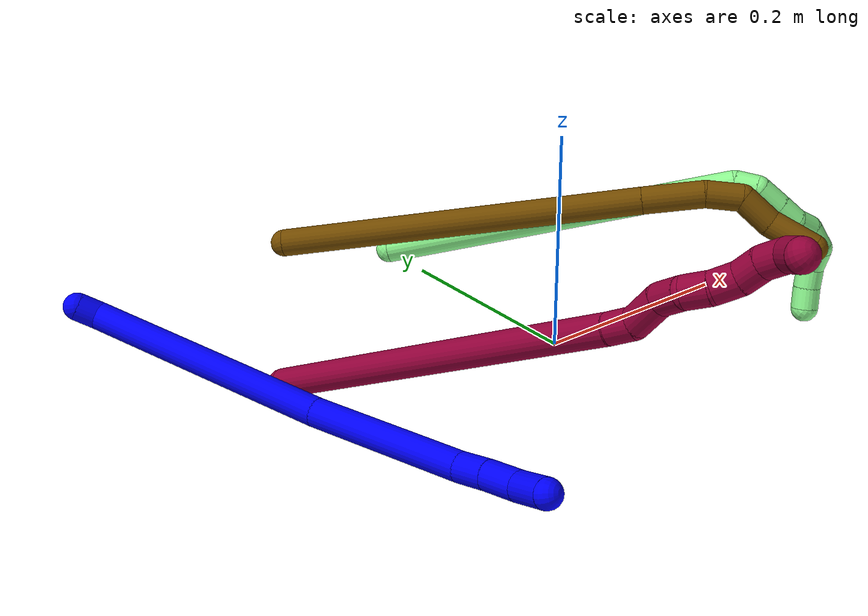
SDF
<sdf version="1.7">
 <world name="default">
  <model name="1">
   <static>0</static>
   <link name="1">
    <collision name="collision-cylinder-e_1_1_4">
     <pose>-0.003978 -0.00771 -0.005909 2.22469 -0.388654 -0.758919</pose>
     <geometry><cylinder><radius>0.0125</radius><length>0.020993</length></cylinder></geometry>
     <surface>
      <friction><ode><mu>1.16</mu><mu2>1.16</mu2><slip1>0</slip1><slip2>0</slip2></ode></friction>
      <contact><ode><kp>1e+06</kp><kd>1</kd><max_vel>0</max_vel><min_depth>0.001</min_depth></ode></contact>
     </surface>
    </collision>
    <visual name="visual-cylinder-e_1_1_4">
     <pose>-0.003978 -0.00771 -0.005909 2.22469 -0.388654 -0.758919</pose>
     <geometry><cylinder><radius>0.0125</radius><length>0.020993</length></cylinder></geometry>
     <material><ambient>0 0 1 1</ambient></material>
    </visual>
    <collision name="collision-cylinder-e_2_4_5">
     <pose>0.000942 -0.066885 -0.120306 2.69865 0.073965 0.325731</pose>
     <geometry><cylinder><radius>0.0125</radius><length>0.240812</length></cylinder></geometry>
     <surface>
      <friction><ode><mu>1.16</mu><mu2>1.16</mu2><slip1>0</slip1><slip2>0</slip2></ode></friction>
      <contact><ode><kp>1e+06</kp><kd>1</kd><max_vel>0</max_vel><min_depth>0.001</min_depth></ode></contact>
     </surface>
    </collision>
    <visual name="visual-cylinder-e_2_4_5">
     <pose>0.000942 -0.066885 -0.120306 2.69865 0.073965 0.325731</pose>
     <geometry><cylinder><radius>0.0125</radius><length>0.240812</length></cylinder></geometry>
     <material><ambient>0 0 1 1</ambient></material>
    </visual>
    <collision name="collision-cylinder-e_3_5_6">
     <pose>0.018374 -0.141351 -0.296509 2.81414 0.11877 0.690915</pose>
     <geometry><cylinder><radius>0.0125</radius><length>0.144044</length></cylinder></geometry>
     <surface>
      <friction><ode><mu>1.16</mu><mu2>1.16</mu2><slip1>0</slip1><slip2>0</slip2></ode></friction>
      <contact><ode><kp>1e+06</kp><kd>1</kd><max_vel>0</max_vel><min_depth>0.001</min_depth></ode></contact>
     </surface>
    </collision>
    <visual name="visual-cylinder-e_3_5_6">
     <pose>0.018374 -0.141351 -0.296509 2.81414 0.11877 0.690915</pose>
     <geometry><cylinder><radius>0.0125</radius><length>0.144044</length></cylinder></geometry>
     <material><ambient>0 0 1 1</ambient></material>
    </visual>
    <collision name="collision-cylinder-e_4_6_7">
     <pose>0.029696 -0.166429 -0.377815 2.98997 0.200029 1.84575</pose>
     <geometry><cylinder><radius>0.0125</radius><length>0.028056</length></cylinder></geometry>
     <surface>
      <friction><ode><mu>1.16</mu><mu2>1.16</mu2><slip1>0</slip1><slip2>0</slip2></ode></friction>
      <contact><ode><kp>1e+06</kp><kd>1</kd><max_vel>0</max_vel><min_depth>0.001</min_depth></ode></contact>
     </surface>
    </collision>
    <visual name="visual-cylinder-e_4_6_7">
     <pose>0.029696 -0.166429 -0.377815 2.98997 0.200029 1.84575</pose>
     <geometry><cylinder><radius>0.0125</radius><length>0.028056</length></cylinder></geometry>
     <material><ambient>0 0 1 1</ambient></material>
    </visual>
    <collision name="collision-cylinder-e_5_7_8">
     <pose>0.036235 -0.171297 -0.406547 2.95928 0.239063 1.84048</pose>
     <geometry><cylinder><radius>0.0125</radius><length>0.031695</length></cylinder></geometry>
     <surface>
      <friction><ode><mu>1.16</mu><mu2>1.16</mu2><slip1>0</slip1><slip2>0</slip2></ode></friction>
      <contact><ode><kp>1e+06</kp><kd>1</kd><max_vel>0</max_vel><min_depth>0.001</min_depth></ode></contact>
     </surface>
    </collision>
    <visual name="visual-cylinder-e_5_7_8">
     <pose>0.036235 -0.171297 -0.406547 2.95928 0.239063 1.84048</pose>
     <geometry><cylinder><radius>0.0125</radius><length>0.031695</length></cylinder></geometry>
     <material><ambient>0 0 1 1</ambient></material>
    </visual>
    <collision name="collision-cylinder-e_6_8_2">
     <pose>0.046728 -0.172669 -0.437449 -3.05175 0.402647 -2.70799</pose>
     <geometry><cylinder><radius>0.0125</radius><length>0.0344</length></cylinder></geometry>
     <surface>
      <friction><ode><mu>1.16</mu><mu2>1.16</mu2><slip1>0</slip1><slip2>0</slip2></ode></friction>
      <contact><ode><kp>1e+06</kp><kd>1</kd><max_vel>0</max_vel><min_depth>0.001</min_depth></ode></contact>
     </surface>
    </collision>
    <visual name="visual-cylinder-e_6_8_2">
     <pose>0.046728 -0.172669 -0.437449 -3.05175 0.402647 -2.70799</pose>
     <geometry><cylinder><radius>0.0125</radius><length>0.0344</length></cylinder></geometry>
     <material><ambient>0 0 1 1</ambient></material>
    </visual>
    <collision name="collision-sphere-2">
     <pose>0.053468 -0.171249 -0.45321 0 -0 0</pose>
     <geometry><sphere><radius>0.0125</radius></sphere></geometry>
     <surface>
      <friction><ode><mu>1.16</mu><mu2>1.16</mu2><slip1>0</slip1><slip2>0</slip2></ode></friction>
      <contact><ode><kp>1e+06</kp><kd>1</kd><max_vel>0</max_vel><min_depth>0.001</min_depth></ode></contact>
     </surface>
    </collision>
    <visual name="visual-sphere-2">
     <pose>0.053468 -0.171249 -0.45321 0 -0 0</pose>
     <geometry><sphere><radius>0.0125</radius></sphere></geometry>
     <material><ambient>0 0 1 1</ambient></material>
    </visual>
    <collision name="collision-sphere-4">
     <pose>-0.007955 -0.01542 -0.011817 0 -0 0</pose>
     <geometry><sphere><radius>0.0125</radius></sphere></geometry>
     <surface>
      <friction><ode><mu>1.16</mu><mu2>1.16</mu2><slip1>0</slip1><slip2>0</slip2></ode></friction>
      <contact><ode><kp>1e+06</kp><kd>1</kd><max_vel>0</max_vel><min_depth>0.001</min_depth></ode></contact>
     </surface>
    </collision>
    <visual name="visual-sphere-4">
     <pose>-0.007955 -0.01542 -0.011817 0 -0 0</pose>
     <geometry><sphere><radius>0.0125</radius></sphere></geometry>
     <material><ambient>0 0 1 1</ambient></material>
    </visual>
    <collision name="collision-sphere-1">
     <geometry><sphere><radius>0.0125</radius></sphere></geometry>
     <surface>
      <friction><ode><mu>1.16</mu><mu2>1.16</mu2><slip1>0</slip1><slip2>0</slip2></ode></friction>
      <contact><ode><kp>1e+06</kp><kd>1</kd><max_vel>0</max_vel><min_depth>0.001</min_depth></ode></contact>
     </surface>
    </collision>
    <visual name="visual-sphere-1">
     <geometry><sphere><radius>0.0125</radius></sphere></geometry>
     <material><ambient>0 0 1 1</ambient></material>
    </visual>
    <collision name="collision-sphere-8">
     <pose>0.039988 -0.174089 -0.421689 0 -0 0</pose>
     <geometry><sphere><radius>0.0125</radius></sphere></geometry>
     <surface>
      <friction><ode><mu>1.16</mu><mu2>1.16</mu2><slip1>0</slip1><slip2>0</slip2></ode></friction>
      <contact><ode><kp>1e+06</kp><kd>1</kd><max_vel>0</max_vel><min_depth>0.001</min_depth></ode></contact>
     </surface>
    </collision>
    <visual name="visual-sphere-8">
     <pose>0.039988 -0.174089 -0.421689 0 -0 0</pose>
     <geometry><sphere><radius>0.0125</radius></sphere></geometry>
     <material><ambient>0 0 1 1</ambient></material>
    </visual>
    <collision name="collision-sphere-5">
     <pose>0.00984 -0.11835 -0.228794 0 -0 0</pose>
     <geometry><sphere><radius>0.0125</radius></sphere></geometry>
     <surface>
      <friction><ode><mu>1.16</mu><mu2>1.16</mu2><slip1>0</slip1><slip2>0</slip2></ode></friction>
      <contact><ode><kp>1e+06</kp><kd>1</kd><max_vel>0</max_vel><min_depth>0.001</min_depth></ode></contact>
     </surface>
    </collision>
    <visual name="visual-sphere-5">
     <pose>0.00984 -0.11835 -0.228794 0 -0 0</pose>
     <geometry><sphere><radius>0.0125</radius></sphere></geometry>
     <material><ambient>0 0 1 1</ambient></material>
    </visual>
    <collision name="collision-sphere-6">
     <pose>0.026908 -0.164353 -0.364224 0 -0 0</pose>
     <geometry><sphere><radius>0.0125</radius></sphere></geometry>
     <surface>
      <friction><ode><mu>1.16</mu><mu2>1.16</mu2><slip1>0</slip1><slip2>0</slip2></ode></friction>
      <contact><ode><kp>1e+06</kp><kd>1</kd><max_vel>0</max_vel><min_depth>0.001</min_depth></ode></contact>
     </surface>
    </collision>
    <visual name="visual-sphere-6">
     <pose>0.026908 -0.164353 -0.364224 0 -0 0</pose>
     <geometry><sphere><radius>0.0125</radius></sphere></geometry>
     <material><ambient>0 0 1 1</ambient></material>
    </visual>
    <collision name="collision-sphere-7">
     <pose>0.032483 -0.168506 -0.391405 0 -0 0</pose>
     <geometry><sphere><radius>0.0125</radius></sphere></geometry>
     <surface>
      <friction><ode><mu>1.16</mu><mu2>1.16</mu2><slip1>0</slip1><slip2>0</slip2></ode></friction>
      <contact><ode><kp>1e+06</kp><kd>1</kd><max_vel>0</max_vel><min_depth>0.001</min_depth></ode></contact>
     </surface>
    </collision>
    <visual name="visual-sphere-7">
     <pose>0.032483 -0.168506 -0.391405 0 -0 0</pose>
     <geometry><sphere><radius>0.0125</radius></sphere></geometry>
     <material><ambient>0 0 1 1</ambient></material>
    </visual>
    <inertial>
     <pose>0.012758 -0.105336 -0.220678 0 -0 0</pose>
     <mass>0.5</mass>
     <inertia>
      <ixx>0.001842</ixx>
      <ixy>0</ixy>
      <ixz>0</ixz>
      <iyy>-0.00064</iyy>
      <iyz>0</iyz>
      <izz>0.00043</izz>
     </inertia>
    </inertial>
   </link>
   <pose>-0.34319 0.253969 0.045245 1.92049 0.121931 -2.73501</pose>
  </model>
  <model name="8">
   <static>0</static>
   <link name="8">
    <collision name="collision-cylinder-e_1_1_4">
     <pose>-0.030015 -0.048874 0.15183 0.311425 -0.186003 -0.029282</pose>
     <geometry><cylinder><radius>0.0125</radius><length>0.324604</length></cylinder></geometry>
     <surface>
      <friction><ode><mu>1.16</mu><mu2>1.16</mu2><slip1>0</slip1><slip2>0</slip2></ode></friction>
      <contact><ode><kp>1e+06</kp><kd>1</kd><max_vel>0</max_vel><min_depth>0.001</min_depth></ode></contact>
     </surface>
    </collision>
    <visual name="visual-cylinder-e_1_1_4">
     <pose>-0.030015 -0.048874 0.15183 0.311425 -0.186003 -0.029282</pose>
     <geometry><cylinder><radius>0.0125</radius><length>0.324604</length></cylinder></geometry>
     <material><ambient>0.584314 0 0.227451 1</ambient></material>
    </visual>
    <collision name="collision-cylinder-e_2_4_5">
     <pose>-0.06149 -0.101757 0.313288 0.394524 -0.139081 -0.02784</pose>
     <geometry><cylinder><radius>0.0125</radius><length>0.021061</length></cylinder></geometry>
     <surface>
      <friction><ode><mu>1.16</mu><mu2>1.16</mu2><slip1>0</slip1><slip2>0</slip2></ode></friction>
      <contact><ode><kp>1e+06</kp><kd>1</kd><max_vel>0</max_vel><min_depth>0.001</min_depth></ode></contact>
     </surface>
    </collision>
    <visual name="visual-cylinder-e_2_4_5">
     <pose>-0.06149 -0.101757 0.313288 0.394524 -0.139081 -0.02784</pose>
     <geometry><cylinder><radius>0.0125</radius><length>0.021061</length></cylinder></geometry>
     <material><ambient>0.584314 0 0.227451 1</ambient></material>
    </visual>
    <collision name="collision-cylinder-e_3_5_6">
     <pose>-0.058922 -0.10721 0.337686 0.097476 0.26501 0.013002</pose>
     <geometry><cylinder><radius>0.0125</radius><length>0.030755</length></cylinder></geometry>
     <surface>
      <friction><ode><mu>1.16</mu><mu2>1.16</mu2><slip1>0</slip1><slip2>0</slip2></ode></friction>
      <contact><ode><kp>1e+06</kp><kd>1</kd><max_vel>0</max_vel><min_depth>0.001</min_depth></ode></contact>
     </surface>
    </collision>
    <visual name="visual-cylinder-e_3_5_6">
     <pose>-0.058922 -0.10721 0.337686 0.097476 0.26501 0.013002</pose>
     <geometry><cylinder><radius>0.0125</radius><length>0.030755</length></cylinder></geometry>
     <material><ambient>0.584314 0 0.227451 1</ambient></material>
    </visual>
    <collision name="collision-cylinder-e_4_6_7">
     <pose>-0.056154 -0.108875 0.363711 0.019688 -0.111441 -0.001098</pose>
     <geometry><cylinder><radius>0.0125</radius><length>0.022653</length></cylinder></geometry>
     <surface>
      <friction><ode><mu>1.16</mu><mu2>1.16</mu2><slip1>0</slip1><slip2>0</slip2></ode></friction>
      <contact><ode><kp>1e+06</kp><kd>1</kd><max_vel>0</max_vel><min_depth>0.001</min_depth></ode></contact>
     </surface>
    </collision>
    <visual name="visual-cylinder-e_4_6_7">
     <pose>-0.056154 -0.108875 0.363711 0.019688 -0.111441 -0.001098</pose>
     <geometry><cylinder><radius>0.0125</radius><length>0.022653</length></cylinder></geometry>
     <material><ambient>0.584314 0 0.227451 1</ambient></material>
    </visual>
    <collision name="collision-cylinder-e_5_7_8">
     <pose>-0.059388 -0.113425 0.38396 0.448436 -0.19526 -0.044664</pose>
     <geometry><cylinder><radius>0.0125</radius><length>0.020352</length></cylinder></geometry>
     <surface>
      <friction><ode><mu>1.16</mu><mu2>1.16</mu2><slip1>0</slip1><slip2>0</slip2></ode></friction>
      <contact><ode><kp>1e+06</kp><kd>1</kd><max_vel>0</max_vel><min_depth>0.001</min_depth></ode></contact>
     </surface>
    </collision>
    <visual name="visual-cylinder-e_5_7_8">
     <pose>-0.059388 -0.113425 0.38396 0.448436 -0.19526 -0.044664</pose>
     <geometry><cylinder><radius>0.0125</radius><length>0.020352</length></cylinder></geometry>
     <material><ambient>0.584314 0 0.227451 1</ambient></material>
    </visual>
    <collision name="collision-cylinder-e_6_8_9">
     <pose>-0.061501 -0.123465 0.401489 0.58984 -0.013486 -0.004097</pose>
     <geometry><cylinder><radius>0.0125</radius><length>0.020538</length></cylinder></geometry>
     <surface>
      <friction><ode><mu>1.16</mu><mu2>1.16</mu2><slip1>0</slip1><slip2>0</slip2></ode></friction>
      <contact><ode><kp>1e+06</kp><kd>1</kd><max_vel>0</max_vel><min_depth>0.001</min_depth></ode></contact>
     </surface>
    </collision>
    <visual name="visual-cylinder-e_6_8_9">
     <pose>-0.061501 -0.123465 0.401489 0.58984 -0.013486 -0.004097</pose>
     <geometry><cylinder><radius>0.0125</radius><length>0.020538</length></cylinder></geometry>
     <material><ambient>0.584314 0 0.227451 1</ambient></material>
    </visual>
    <collision name="collision-cylinder-e_7_9_10">
     <pose>-0.059754 -0.131302 0.419625 0.217873 0.189329 0.020768</pose>
     <geometry><cylinder><radius>0.0125</radius><length>0.02003</length></cylinder></geometry>
     <surface>
      <friction><ode><mu>1.16</mu><mu2>1.16</mu2><slip1>0</slip1><slip2>0</slip2></ode></friction>
      <contact><ode><kp>1e+06</kp><kd>1</kd><max_vel>0</max_vel><min_depth>0.001</min_depth></ode></contact>
     </surface>
    </collision>
    <visual name="visual-cylinder-e_7_9_10">
     <pose>-0.059754 -0.131302 0.419625 0.217873 0.189329 0.020768</pose>
     <geometry><cylinder><radius>0.0125</radius><length>0.02003</length></cylinder></geometry>
     <material><ambient>0.584314 0 0.227451 1</ambient></material>
    </visual>
    <collision name="collision-cylinder-e_8_10_11">
     <pose>-0.058665 -0.134926 0.439086 0.150783 -0.079582 -0.006014</pose>
     <geometry><cylinder><radius>0.0125</radius><length>0.020004</length></cylinder></geometry>
     <surface>
      <friction><ode><mu>1.16</mu><mu2>1.16</mu2><slip1>0</slip1><slip2>0</slip2></ode></friction>
      <contact><ode><kp>1e+06</kp><kd>1</kd><max_vel>0</max_vel><min_depth>0.001</min_depth></ode></contact>
     </surface>
    </collision>
    <visual name="visual-cylinder-e_8_10_11">
     <pose>-0.058665 -0.134926 0.439086 0.150783 -0.079582 -0.006014</pose>
     <geometry><cylinder><radius>0.0125</radius><length>0.020004</length></cylinder></geometry>
     <material><ambient>0.584314 0 0.227451 1</ambient></material>
    </visual>
    <collision name="collision-cylinder-e_9_11_2">
     <pose>-0.062087 -0.132214 0.457627 -0.451401 -0.265837 0.061382</pose>
     <geometry><cylinder><radius>0.0125</radius><length>0.020002</length></cylinder></geometry>
     <surface>
      <friction><ode><mu>1.16</mu><mu2>1.16</mu2><slip1>0</slip1><slip2>0</slip2></ode></friction>
      <contact><ode><kp>1e+06</kp><kd>1</kd><max_vel>0</max_vel><min_depth>0.001</min_depth></ode></contact>
     </surface>
    </collision>
    <visual name="visual-cylinder-e_9_11_2">
     <pose>-0.062087 -0.132214 0.457627 -0.451401 -0.265837 0.061382</pose>
     <geometry><cylinder><radius>0.0125</radius><length>0.020002</length></cylinder></geometry>
     <material><ambient>0.584314 0 0.227451 1</ambient></material>
    </visual>
    <collision name="collision-sphere-2">
     <pose>-0.064715 -0.128004 0.46631 0 -0 0</pose>
     <geometry><sphere><radius>0.0125</radius></sphere></geometry>
     <surface>
      <friction><ode><mu>1.16</mu><mu2>1.16</mu2><slip1>0</slip1><slip2>0</slip2></ode></friction>
      <contact><ode><kp>1e+06</kp><kd>1</kd><max_vel>0</max_vel><min_depth>0.001</min_depth></ode></contact>
     </surface>
    </collision>
    <visual name="visual-sphere-2">
     <pose>-0.064715 -0.128004 0.46631 0 -0 0</pose>
     <geometry><sphere><radius>0.0125</radius></sphere></geometry>
     <material><ambient>0.584314 0 0.227451 1</ambient></material>
    </visual>
    <collision name="collision-sphere-11">
     <pose>-0.05946 -0.136424 0.448943 0 -0 0</pose>
     <geometry><sphere><radius>0.0125</radius></sphere></geometry>
     <surface>
      <friction><ode><mu>1.16</mu><mu2>1.16</mu2><slip1>0</slip1><slip2>0</slip2></ode></friction>
      <contact><ode><kp>1e+06</kp><kd>1</kd><max_vel>0</max_vel><min_depth>0.001</min_depth></ode></contact>
     </surface>
    </collision>
    <visual name="visual-sphere-11">
     <pose>-0.05946 -0.136424 0.448943 0 -0 0</pose>
     <geometry><sphere><radius>0.0125</radius></sphere></geometry>
     <material><ambient>0.584314 0 0.227451 1</ambient></material>
    </visual>
    <collision name="collision-sphere-10">
     <pose>-0.05787 -0.133428 0.429229 0 -0 0</pose>
     <geometry><sphere><radius>0.0125</radius></sphere></geometry>
     <surface>
      <friction><ode><mu>1.16</mu><mu2>1.16</mu2><slip1>0</slip1><slip2>0</slip2></ode></friction>
      <contact><ode><kp>1e+06</kp><kd>1</kd><max_vel>0</max_vel><min_depth>0.001</min_depth></ode></contact>
     </surface>
    </collision>
    <visual name="visual-sphere-10">
     <pose>-0.05787 -0.133428 0.429229 0 -0 0</pose>
     <geometry><sphere><radius>0.0125</radius></sphere></geometry>
     <material><ambient>0.584314 0 0.227451 1</ambient></material>
    </visual>
    <collision name="collision-sphere-9">
     <pose>-0.061639 -0.129176 0.410022 0 -0 0</pose>
     <geometry><sphere><radius>0.0125</radius></sphere></geometry>
     <surface>
      <friction><ode><mu>1.16</mu><mu2>1.16</mu2><slip1>0</slip1><slip2>0</slip2></ode></friction>
      <contact><ode><kp>1e+06</kp><kd>1</kd><max_vel>0</max_vel><min_depth>0.001</min_depth></ode></contact>
     </surface>
    </collision>
    <visual name="visual-sphere-9">
     <pose>-0.061639 -0.129176 0.410022 0 -0 0</pose>
     <geometry><sphere><radius>0.0125</radius></sphere></geometry>
     <material><ambient>0.584314 0 0.227451 1</ambient></material>
    </visual>
    <collision name="collision-sphere-4">
     <pose>-0.06003 -0.097748 0.30366 0 -0 0</pose>
     <geometry><sphere><radius>0.0125</radius></sphere></geometry>
     <surface>
      <friction><ode><mu>1.16</mu><mu2>1.16</mu2><slip1>0</slip1><slip2>0</slip2></ode></friction>
      <contact><ode><kp>1e+06</kp><kd>1</kd><max_vel>0</max_vel><min_depth>0.001</min_depth></ode></contact>
     </surface>
    </collision>
    <visual name="visual-sphere-4">
     <pose>-0.06003 -0.097748 0.30366 0 -0 0</pose>
     <geometry><sphere><radius>0.0125</radius></sphere></geometry>
     <material><ambient>0.584314 0 0.227451 1</ambient></material>
    </visual>
    <collision name="collision-sphere-1">
     <geometry><sphere><radius>0.0125</radius></sphere></geometry>
     <surface>
      <friction><ode><mu>1.16</mu><mu2>1.16</mu2><slip1>0</slip1><slip2>0</slip2></ode></friction>
      <contact><ode><kp>1e+06</kp><kd>1</kd><max_vel>0</max_vel><min_depth>0.001</min_depth></ode></contact>
     </surface>
    </collision>
    <visual name="visual-sphere-1">
     <geometry><sphere><radius>0.0125</radius></sphere></geometry>
     <material><ambient>0.584314 0 0.227451 1</ambient></material>
    </visual>
    <collision name="collision-sphere-8">
     <pose>-0.061362 -0.117753 0.392956 0 -0 0</pose>
     <geometry><sphere><radius>0.0125</radius></sphere></geometry>
     <surface>
      <friction><ode><mu>1.16</mu><mu2>1.16</mu2><slip1>0</slip1><slip2>0</slip2></ode></friction>
      <contact><ode><kp>1e+06</kp><kd>1</kd><max_vel>0</max_vel><min_depth>0.001</min_depth></ode></contact>
     </surface>
    </collision>
    <visual name="visual-sphere-8">
     <pose>-0.061362 -0.117753 0.392956 0 -0 0</pose>
     <geometry><sphere><radius>0.0125</radius></sphere></geometry>
     <material><ambient>0.584314 0 0.227451 1</ambient></material>
    </visual>
    <collision name="collision-sphere-5">
     <pose>-0.06295 -0.105765 0.322916 0 -0 0</pose>
     <geometry><sphere><radius>0.0125</radius></sphere></geometry>
     <surface>
      <friction><ode><mu>1.16</mu><mu2>1.16</mu2><slip1>0</slip1><slip2>0</slip2></ode></friction>
      <contact><ode><kp>1e+06</kp><kd>1</kd><max_vel>0</max_vel><min_depth>0.001</min_depth></ode></contact>
     </surface>
    </collision>
    <visual name="visual-sphere-5">
     <pose>-0.06295 -0.105765 0.322916 0 -0 0</pose>
     <geometry><sphere><radius>0.0125</radius></sphere></geometry>
     <material><ambient>0.584314 0 0.227451 1</ambient></material>
    </visual>
    <collision name="collision-sphere-6">
     <pose>-0.054894 -0.108654 0.352456 0 -0 0</pose>
     <geometry><sphere><radius>0.0125</radius></sphere></geometry>
     <surface>
      <friction><ode><mu>1.16</mu><mu2>1.16</mu2><slip1>0</slip1><slip2>0</slip2></ode></friction>
      <contact><ode><kp>1e+06</kp><kd>1</kd><max_vel>0</max_vel><min_depth>0.001</min_depth></ode></contact>
     </surface>
    </collision>
    <visual name="visual-sphere-6">
     <pose>-0.054894 -0.108654 0.352456 0 -0 0</pose>
     <geometry><sphere><radius>0.0125</radius></sphere></geometry>
     <material><ambient>0.584314 0 0.227451 1</ambient></material>
    </visual>
    <collision name="collision-sphere-7">
     <pose>-0.057414 -0.109097 0.374965 0 -0 0</pose>
     <geometry><sphere><radius>0.0125</radius></sphere></geometry>
     <surface>
      <friction><ode><mu>1.16</mu><mu2>1.16</mu2><slip1>0</slip1><slip2>0</slip2></ode></friction>
      <contact><ode><kp>1e+06</kp><kd>1</kd><max_vel>0</max_vel><min_depth>0.001</min_depth></ode></contact>
     </surface>
    </collision>
    <visual name="visual-sphere-7">
     <pose>-0.057414 -0.109097 0.374965 0 -0 0</pose>
     <geometry><sphere><radius>0.0125</radius></sphere></geometry>
     <material><ambient>0.584314 0 0.227451 1</ambient></material>
    </visual>
    <inertial>
     <pose>-0.040413 -0.073178 0.23382 0 -0 0</pose>
     <mass>0.5</mass>
     <inertia><ixx>0.002739</ixx><ixy>0</ixy><ixz>0</ixz><iyy>0.00265</iyy><iyz>0</iyz><izz>0.00143</izz></inertia>
    </inertial>
   </link>
   <pose>-0.243121 0.075436 0.011492 0.189327 -0.885172 1.39512</pose>
  </model>
  <model name="12">
   <static>0</static>
   <link name="12">
    <collision name="collision-cylinder-e_1_1_4">
     <pose>0.038886 -0.036343 0.158032 0.226045 0.235359 0.026837</pose>
     <geometry><cylinder><radius>0.0125</radius><length>0.333509</length></cylinder></geometry>
     <surface>
      <friction><ode><mu>1.16</mu><mu2>1.16</mu2><slip1>0</slip1><slip2>0</slip2></ode></friction>
      <contact><ode><kp>1e+06</kp><kd>1</kd><max_vel>0</max_vel><min_depth>0.001</min_depth></ode></contact>
     </surface>
    </collision>
    <visual name="visual-cylinder-e_1_1_4">
     <pose>0.038886 -0.036343 0.158032 0.226045 0.235359 0.026837</pose>
     <geometry><cylinder><radius>0.0125</radius><length>0.333509</length></cylinder></geometry>
     <material><ambient>0.466667 0.301961 0 1</ambient></material>
    </visual>
    <collision name="collision-cylinder-e_2_4_5">
     <pose>0.084475 -0.079163 0.342501 0.240217 0.24149 0.029286</pose>
     <geometry><cylinder><radius>0.0125</radius><length>0.056064</length></cylinder></geometry>
     <surface>
      <friction><ode><mu>1.16</mu><mu2>1.16</mu2><slip1>0</slip1><slip2>0</slip2></ode></friction>
      <contact><ode><kp>1e+06</kp><kd>1</kd><max_vel>0</max_vel><min_depth>0.001</min_depth></ode></contact>
     </surface>
    </collision>
    <visual name="visual-cylinder-e_2_4_5">
     <pose>0.084475 -0.079163 0.342501 0.240217 0.24149 0.029286</pose>
     <geometry><cylinder><radius>0.0125</radius><length>0.056064</length></cylinder></geometry>
     <material><ambient>0.466667 0.301961 0 1</ambient></material>
    </visual>
    <collision name="collision-cylinder-e_3_5_6">
     <pose>0.098048 -0.090831 0.382928 0.355409 0.431381 0.078659</pose>
     <geometry><cylinder><radius>0.0125</radius><length>0.032854</length></cylinder></geometry>
     <surface>
      <friction><ode><mu>1.16</mu><mu2>1.16</mu2><slip1>0</slip1><slip2>0</slip2></ode></friction>
      <contact><ode><kp>1e+06</kp><kd>1</kd><max_vel>0</max_vel><min_depth>0.001</min_depth></ode></contact>
     </surface>
    </collision>
    <visual name="visual-cylinder-e_3_5_6">
     <pose>0.098048 -0.090831 0.382928 0.355409 0.431381 0.078659</pose>
     <geometry><cylinder><radius>0.0125</radius><length>0.032854</length></cylinder></geometry>
     <material><ambient>0.466667 0.301961 0 1</ambient></material>
    </visual>
    <collision name="collision-cylinder-e_4_6_7">
     <pose>0.117302 -0.105325 0.403032 0.989226 0.838647 0.471869</pose>
     <geometry><cylinder><radius>0.0125</radius><length>0.033306</length></cylinder></geometry>
     <surface>
      <friction><ode><mu>1.16</mu><mu2>1.16</mu2><slip1>0</slip1><slip2>0</slip2></ode></friction>
      <contact><ode><kp>1e+06</kp><kd>1</kd><max_vel>0</max_vel><min_depth>0.001</min_depth></ode></contact>
     </surface>
    </collision>
    <visual name="visual-cylinder-e_4_6_7">
     <pose>0.117302 -0.105325 0.403032 0.989226 0.838647 0.471869</pose>
     <geometry><cylinder><radius>0.0125</radius><length>0.033306</length></cylinder></geometry>
     <material><ambient>0.466667 0.301961 0 1</ambient></material>
    </visual>
    <collision name="collision-cylinder-e_5_7_2">
     <pose>0.141826 -0.12815 0.421784 0.81929 0.580501 0.257944</pose>
     <geometry><cylinder><radius>0.0125</radius><length>0.044267</length></cylinder></geometry>
     <surface>
      <friction><ode><mu>1.16</mu><mu2>1.16</mu2><slip1>0</slip1><slip2>0</slip2></ode></friction>
      <contact><ode><kp>1e+06</kp><kd>1</kd><max_vel>0</max_vel><min_depth>0.001</min_depth></ode></contact>
     </surface>
    </collision>
    <visual name="visual-cylinder-e_5_7_2">
     <pose>0.141826 -0.12815 0.421784 0.81929 0.580501 0.257944</pose>
     <geometry><cylinder><radius>0.0125</radius><length>0.044267</length></cylinder></geometry>
     <material><ambient>0.466667 0.301961 0 1</ambient></material>
    </visual>
    <collision name="collision-sphere-2">
     <pose>0.153965 -0.141673 0.43442 0 -0 0</pose>
     <geometry><sphere><radius>0.0125</radius></sphere></geometry>
     <surface>
      <friction><ode><mu>1.16</mu><mu2>1.16</mu2><slip1>0</slip1><slip2>0</slip2></ode></friction>
      <contact><ode><kp>1e+06</kp><kd>1</kd><max_vel>0</max_vel><min_depth>0.001</min_depth></ode></contact>
     </surface>
    </collision>
    <visual name="visual-sphere-2">
     <pose>0.153965 -0.141673 0.43442 0 -0 0</pose>
     <geometry><sphere><radius>0.0125</radius></sphere></geometry>
     <material><ambient>0.466667 0.301961 0 1</ambient></material>
    </visual>
    <collision name="collision-sphere-7">
     <pose>0.129687 -0.114627 0.409148 0 -0 0</pose>
     <geometry><sphere><radius>0.0125</radius></sphere></geometry>
     <surface>
      <friction><ode><mu>1.16</mu><mu2>1.16</mu2><slip1>0</slip1><slip2>0</slip2></ode></friction>
      <contact><ode><kp>1e+06</kp><kd>1</kd><max_vel>0</max_vel><min_depth>0.001</min_depth></ode></contact>
     </surface>
    </collision>
    <visual name="visual-sphere-7">
     <pose>0.129687 -0.114627 0.409148 0 -0 0</pose>
     <geometry><sphere><radius>0.0125</radius></sphere></geometry>
     <material><ambient>0.466667 0.301961 0 1</ambient></material>
    </visual>
    <collision name="collision-sphere-6">
     <pose>0.104916 -0.096023 0.396917 0 -0 0</pose>
     <geometry><sphere><radius>0.0125</radius></sphere></geometry>
     <surface>
      <friction><ode><mu>1.16</mu><mu2>1.16</mu2><slip1>0</slip1><slip2>0</slip2></ode></friction>
      <contact><ode><kp>1e+06</kp><kd>1</kd><max_vel>0</max_vel><min_depth>0.001</min_depth></ode></contact>
     </surface>
    </collision>
    <visual name="visual-sphere-6">
     <pose>0.104916 -0.096023 0.396917 0 -0 0</pose>
     <geometry><sphere><radius>0.0125</radius></sphere></geometry>
     <material><ambient>0.466667 0.301961 0 1</ambient></material>
    </visual>
    <collision name="collision-sphere-5">
     <pose>0.091179 -0.085638 0.368938 0 -0 0</pose>
     <geometry><sphere><radius>0.0125</radius></sphere></geometry>
     <surface>
      <friction><ode><mu>1.16</mu><mu2>1.16</mu2><slip1>0</slip1><slip2>0</slip2></ode></friction>
      <contact><ode><kp>1e+06</kp><kd>1</kd><max_vel>0</max_vel><min_depth>0.001</min_depth></ode></contact>
     </surface>
    </collision>
    <visual name="visual-sphere-5">
     <pose>0.091179 -0.085638 0.368938 0 -0 0</pose>
     <geometry><sphere><radius>0.0125</radius></sphere></geometry>
     <material><ambient>0.466667 0.301961 0 1</ambient></material>
    </visual>
    <collision name="collision-sphere-1">
     <geometry><sphere><radius>0.0125</radius></sphere></geometry>
     <surface>
      <friction><ode><mu>1.16</mu><mu2>1.16</mu2><slip1>0</slip1><slip2>0</slip2></ode></friction>
      <contact><ode><kp>1e+06</kp><kd>1</kd><max_vel>0</max_vel><min_depth>0.001</min_depth></ode></contact>
     </surface>
    </collision>
    <visual name="visual-sphere-1">
     <geometry><sphere><radius>0.0125</radius></sphere></geometry>
     <material><ambient>0.466667 0.301961 0 1</ambient></material>
    </visual>
    <collision name="collision-sphere-4">
     <pose>0.077771 -0.072687 0.316064 0 -0 0</pose>
     <geometry><sphere><radius>0.0125</radius></sphere></geometry>
     <surface>
      <friction><ode><mu>1.16</mu><mu2>1.16</mu2><slip1>0</slip1><slip2>0</slip2></ode></friction>
      <contact><ode><kp>1e+06</kp><kd>1</kd><max_vel>0</max_vel><min_depth>0.001</min_depth></ode></contact>
     </surface>
    </collision>
    <visual name="visual-sphere-4">
     <pose>0.077771 -0.072687 0.316064 0 -0 0</pose>
     <geometry><sphere><radius>0.0125</radius></sphere></geometry>
     <material><ambient>0.466667 0.301961 0 1</ambient></material>
    </visual>
    <inertial>
     <pose>0.062222 -0.057448 0.233165 0 -0 0</pose>
     <mass>0.5</mass>
     <inertia>
      <ixx>0.003145</ixx>
      <ixy>0</ixy>
      <ixz>0</ixz>
      <iyy>0.003133</iyy>
      <iyz>0</iyz>
      <izz>-1.4e-05</izz>
     </inertia>
    </inertial>
   </link>
   <pose>-0.152888 0.21027 0.069704 0.615703 0.978207 0.055754</pose>
  </model>
  <model name="13">
   <static>0</static>
   <link name="13">
    <collision name="collision-cylinder-e_1_1_4">
     <pose>0.049425 -0.109979 0.110721 0.782038 0.306712 0.12727</pose>
     <geometry><cylinder><radius>0.0125</radius><length>0.327398</length></cylinder></geometry>
     <surface>
      <friction><ode><mu>1.16</mu><mu2>1.16</mu2><slip1>0</slip1><slip2>0</slip2></ode></friction>
      <contact><ode><kp>1e+06</kp><kd>1</kd><max_vel>0</max_vel><min_depth>0.001</min_depth></ode></contact>
     </surface>
    </collision>
    <visual name="visual-cylinder-e_1_1_4">
     <pose>0.049425 -0.109979 0.110721 0.782038 0.306712 0.12727</pose>
     <geometry><cylinder><radius>0.0125</radius><length>0.327398</length></cylinder></geometry>
     <material><ambient>0.564706 0.984314 0.572549 1</ambient></material>
    </visual>
    <collision name="collision-cylinder-e_2_4_5">
     <pose>0.09987 -0.229604 0.22561 1.16289 0.096771 0.063629</pose>
     <geometry><cylinder><radius>0.0125</radius><length>0.021114</length></cylinder></geometry>
     <surface>
      <friction><ode><mu>1.16</mu><mu2>1.16</mu2><slip1>0</slip1><slip2>0</slip2></ode></friction>
      <contact><ode><kp>1e+06</kp><kd>1</kd><max_vel>0</max_vel><min_depth>0.001</min_depth></ode></contact>
     </surface>
    </collision>
    <visual name="visual-cylinder-e_2_4_5">
     <pose>0.09987 -0.229604 0.22561 1.16289 0.096771 0.063629</pose>
     <geometry><cylinder><radius>0.0125</radius><length>0.021114</length></cylinder></geometry>
     <material><ambient>0.564706 0.984314 0.572549 1</ambient></material>
    </visual>
    <collision name="collision-cylinder-e_3_5_6">
     <pose>0.104662 -0.251031 0.227218 1.78475 0.303237 0.374665</pose>
     <geometry><cylinder><radius>0.0125</radius><length>0.025267</length></cylinder></geometry>
     <surface>
      <friction><ode><mu>1.16</mu><mu2>1.16</mu2><slip1>0</slip1><slip2>0</slip2></ode></friction>
      <contact><ode><kp>1e+06</kp><kd>1</kd><max_vel>0</max_vel><min_depth>0.001</min_depth></ode></contact>
     </surface>
    </collision>
    <visual name="visual-cylinder-e_3_5_6">
     <pose>0.104662 -0.251031 0.227218 1.78475 0.303237 0.374665</pose>
     <geometry><cylinder><radius>0.0125</radius><length>0.025267</length></cylinder></geometry>
     <material><ambient>0.564706 0.984314 0.572549 1</ambient></material>
    </visual>
    <collision name="collision-cylinder-e_4_6_7">
     <pose>0.111651 -0.272989 0.222273 1.80101 0.298524 0.374944</pose>
     <geometry><cylinder><radius>0.0125</radius><length>0.021869</length></cylinder></geometry>
     <surface>
      <friction><ode><mu>1.16</mu><mu2>1.16</mu2><slip1>0</slip1><slip2>0</slip2></ode></friction>
      <contact><ode><kp>1e+06</kp><kd>1</kd><max_vel>0</max_vel><min_depth>0.001</min_depth></ode></contact>
     </surface>
    </collision>
    <visual name="visual-cylinder-e_4_6_7">
     <pose>0.111651 -0.272989 0.222273 1.80101 0.298524 0.374944</pose>
     <geometry><cylinder><radius>0.0125</radius><length>0.021869</length></cylinder></geometry>
     <material><ambient>0.564706 0.984314 0.572549 1</ambient></material>
    </visual>
    <collision name="collision-cylinder-e_5_7_8">
     <pose>0.122074 -0.290502 0.218113 1.80808 0.762201 0.941869</pose>
     <geometry><cylinder><radius>0.0125</radius><length>0.020875</length></cylinder></geometry>
     <surface>
      <friction><ode><mu>1.16</mu><mu2>1.16</mu2><slip1>0</slip1><slip2>0</slip2></ode></friction>
      <contact><ode><kp>1e+06</kp><kd>1</kd><max_vel>0</max_vel><min_depth>0.001</min_depth></ode></contact>
     </surface>
    </collision>
    <visual name="visual-cylinder-e_5_7_8">
     <pose>0.122074 -0.290502 0.218113 1.80808 0.762201 0.941869</pose>
     <geometry><cylinder><radius>0.0125</radius><length>0.020875</length></cylinder></geometry>
     <material><ambient>0.564706 0.984314 0.572549 1</ambient></material>
    </visual>
    <collision name="collision-cylinder-e_6_8_9">
     <pose>0.131848 -0.307152 0.210567 2.12568 0.230169 0.409482</pose>
     <geometry><cylinder><radius>0.0125</radius><length>0.022505</length></cylinder></geometry>
     <surface>
      <friction><ode><mu>1.16</mu><mu2>1.16</mu2><slip1>0</slip1><slip2>0</slip2></ode></friction>
      <contact><ode><kp>1e+06</kp><kd>1</kd><max_vel>0</max_vel><min_depth>0.001</min_depth></ode></contact>
     </surface>
    </collision>
    <visual name="visual-cylinder-e_6_8_9">
     <pose>0.131848 -0.307152 0.210567 2.12568 0.230169 0.409482</pose>
     <geometry><cylinder><radius>0.0125</radius><length>0.022505</length></cylinder></geometry>
     <material><ambient>0.564706 0.984314 0.572549 1</ambient></material>
    </visual>
    <collision name="collision-cylinder-e_7_9_10">
     <pose>0.135451 -0.319039 0.194751 2.8906 0.099569 0.752285</pose>
     <geometry><cylinder><radius>0.0125</radius><length>0.020841</length></cylinder></geometry>
     <surface>
      <friction><ode><mu>1.16</mu><mu2>1.16</mu2><slip1>0</slip1><slip2>0</slip2></ode></friction>
      <contact><ode><kp>1e+06</kp><kd>1</kd><max_vel>0</max_vel><min_depth>0.001</min_depth></ode></contact>
     </surface>
    </collision>
    <visual name="visual-cylinder-e_7_9_10">
     <pose>0.135451 -0.319039 0.194751 2.8906 0.099569 0.752285</pose>
     <geometry><cylinder><radius>0.0125</radius><length>0.020841</length></cylinder></geometry>
     <material><ambient>0.564706 0.984314 0.572549 1</ambient></material>
    </visual>
    <collision name="collision-cylinder-e_8_10_11">
     <pose>0.134245 -0.326258 0.176079 2.64788 -0.224969 -0.842827</pose>
     <geometry><cylinder><radius>0.0125</radius><length>0.020102</length></cylinder></geometry>
     <surface>
      <friction><ode><mu>1.16</mu><mu2>1.16</mu2><slip1>0</slip1><slip2>0</slip2></ode></friction>
      <contact><ode><kp>1e+06</kp><kd>1</kd><max_vel>0</max_vel><min_depth>0.001</min_depth></ode></contact>
     </surface>
    </collision>
    <visual name="visual-cylinder-e_8_10_11">
     <pose>0.134245 -0.326258 0.176079 2.64788 -0.224969 -0.842827</pose>
     <geometry><cylinder><radius>0.0125</radius><length>0.020102</length></cylinder></geometry>
     <material><ambient>0.564706 0.984314 0.572549 1</ambient></material>
    </visual>
    <collision name="collision-cylinder-e_9_11_2">
     <pose>0.12934 -0.336154 0.159352 2.56623 -0.269164 -0.858313</pose>
     <geometry><cylinder><radius>0.0125</radius><length>0.02003</length></cylinder></geometry>
     <surface>
      <friction><ode><mu>1.16</mu><mu2>1.16</mu2><slip1>0</slip1><slip2>0</slip2></ode></friction>
      <contact><ode><kp>1e+06</kp><kd>1</kd><max_vel>0</max_vel><min_depth>0.001</min_depth></ode></contact>
     </surface>
    </collision>
    <visual name="visual-cylinder-e_9_11_2">
     <pose>0.12934 -0.336154 0.159352 2.56623 -0.269164 -0.858313</pose>
     <geometry><cylinder><radius>0.0125</radius><length>0.02003</length></cylinder></geometry>
     <material><ambient>0.564706 0.984314 0.572549 1</ambient></material>
    </visual>
    <collision name="collision-sphere-2">
     <pose>0.126677 -0.341407 0.151252 0 -0 0</pose>
     <geometry><sphere><radius>0.0125</radius></sphere></geometry>
     <surface>
      <friction><ode><mu>1.16</mu><mu2>1.16</mu2><slip1>0</slip1><slip2>0</slip2></ode></friction>
      <contact><ode><kp>1e+06</kp><kd>1</kd><max_vel>0</max_vel><min_depth>0.001</min_depth></ode></contact>
     </surface>
    </collision>
    <visual name="visual-sphere-2">
     <pose>0.126677 -0.341407 0.151252 0 -0 0</pose>
     <geometry><sphere><radius>0.0125</radius></sphere></geometry>
     <material><ambient>0.564706 0.984314 0.572549 1</ambient></material>
    </visual>
    <collision name="collision-sphere-11">
     <pose>0.132003 -0.330901 0.167452 0 -0 0</pose>
     <geometry><sphere><radius>0.0125</radius></sphere></geometry>
     <surface>
      <friction><ode><mu>1.16</mu><mu2>1.16</mu2><slip1>0</slip1><slip2>0</slip2></ode></friction>
      <contact><ode><kp>1e+06</kp><kd>1</kd><max_vel>0</max_vel><min_depth>0.001</min_depth></ode></contact>
     </surface>
    </collision>
    <visual name="visual-sphere-11">
     <pose>0.132003 -0.330901 0.167452 0 -0 0</pose>
     <geometry><sphere><radius>0.0125</radius></sphere></geometry>
     <material><ambient>0.564706 0.984314 0.572549 1</ambient></material>
    </visual>
    <collision name="collision-sphere-10">
     <pose>0.136487 -0.321614 0.184707 0 -0 0</pose>
     <geometry><sphere><radius>0.0125</radius></sphere></geometry>
     <surface>
      <friction><ode><mu>1.16</mu><mu2>1.16</mu2><slip1>0</slip1><slip2>0</slip2></ode></friction>
      <contact><ode><kp>1e+06</kp><kd>1</kd><max_vel>0</max_vel><min_depth>0.001</min_depth></ode></contact>
     </surface>
    </collision>
    <visual name="visual-sphere-10">
     <pose>0.136487 -0.321614 0.184707 0 -0 0</pose>
     <geometry><sphere><radius>0.0125</radius></sphere></geometry>
     <material><ambient>0.564706 0.984314 0.572549 1</ambient></material>
    </visual>
    <collision name="collision-sphere-9">
     <pose>0.134416 -0.316464 0.204795 0 -0 0</pose>
     <geometry><sphere><radius>0.0125</radius></sphere></geometry>
     <surface>
      <friction><ode><mu>1.16</mu><mu2>1.16</mu2><slip1>0</slip1><slip2>0</slip2></ode></friction>
      <contact><ode><kp>1e+06</kp><kd>1</kd><max_vel>0</max_vel><min_depth>0.001</min_depth></ode></contact>
     </surface>
    </collision>
    <visual name="visual-sphere-9">
     <pose>0.134416 -0.316464 0.204795 0 -0 0</pose>
     <geometry><sphere><radius>0.0125</radius></sphere></geometry>
     <material><ambient>0.564706 0.984314 0.572549 1</ambient></material>
    </visual>
    <collision name="collision-sphere-4">
     <pose>0.09885 -0.219958 0.221441 0 -0 0</pose>
     <geometry><sphere><radius>0.0125</radius></sphere></geometry>
     <surface>
      <friction><ode><mu>1.16</mu><mu2>1.16</mu2><slip1>0</slip1><slip2>0</slip2></ode></friction>
      <contact><ode><kp>1e+06</kp><kd>1</kd><max_vel>0</max_vel><min_depth>0.001</min_depth></ode></contact>
     </surface>
    </collision>
    <visual name="visual-sphere-4">
     <pose>0.09885 -0.219958 0.221441 0 -0 0</pose>
     <geometry><sphere><radius>0.0125</radius></sphere></geometry>
     <material><ambient>0.564706 0.984314 0.572549 1</ambient></material>
    </visual>
    <collision name="collision-sphere-1">
     <geometry><sphere><radius>0.0125</radius></sphere></geometry>
     <surface>
      <friction><ode><mu>1.16</mu><mu2>1.16</mu2><slip1>0</slip1><slip2>0</slip2></ode></friction>
      <contact><ode><kp>1e+06</kp><kd>1</kd><max_vel>0</max_vel><min_depth>0.001</min_depth></ode></contact>
     </surface>
    </collision>
    <visual name="visual-sphere-1">
     <geometry><sphere><radius>0.0125</radius></sphere></geometry>
     <material><ambient>0.564706 0.984314 0.572549 1</ambient></material>
    </visual>
    <collision name="collision-sphere-8">
     <pose>0.129281 -0.29784 0.216339 0 -0 0</pose>
     <geometry><sphere><radius>0.0125</radius></sphere></geometry>
     <surface>
      <friction><ode><mu>1.16</mu><mu2>1.16</mu2><slip1>0</slip1><slip2>0</slip2></ode></friction>
      <contact><ode><kp>1e+06</kp><kd>1</kd><max_vel>0</max_vel><min_depth>0.001</min_depth></ode></contact>
     </surface>
    </collision>
    <visual name="visual-sphere-8">
     <pose>0.129281 -0.29784 0.216339 0 -0 0</pose>
     <geometry><sphere><radius>0.0125</radius></sphere></geometry>
     <material><ambient>0.564706 0.984314 0.572549 1</ambient></material>
    </visual>
    <collision name="collision-sphere-5">
     <pose>0.10089 -0.239249 0.229778 0 -0 0</pose>
     <geometry><sphere><radius>0.0125</radius></sphere></geometry>
     <surface>
      <friction><ode><mu>1.16</mu><mu2>1.16</mu2><slip1>0</slip1><slip2>0</slip2></ode></friction>
      <contact><ode><kp>1e+06</kp><kd>1</kd><max_vel>0</max_vel><min_depth>0.001</min_depth></ode></contact>
     </surface>
    </collision>
    <visual name="visual-sphere-5">
     <pose>0.10089 -0.239249 0.229778 0 -0 0</pose>
     <geometry><sphere><radius>0.0125</radius></sphere></geometry>
     <material><ambient>0.564706 0.984314 0.572549 1</ambient></material>
    </visual>
    <collision name="collision-sphere-6">
     <pose>0.108435 -0.262813 0.224658 0 -0 0</pose>
     <geometry><sphere><radius>0.0125</radius></sphere></geometry>
     <surface>
      <friction><ode><mu>1.16</mu><mu2>1.16</mu2><slip1>0</slip1><slip2>0</slip2></ode></friction>
      <contact><ode><kp>1e+06</kp><kd>1</kd><max_vel>0</max_vel><min_depth>0.001</min_depth></ode></contact>
     </surface>
    </collision>
    <visual name="visual-sphere-6">
     <pose>0.108435 -0.262813 0.224658 0 -0 0</pose>
     <geometry><sphere><radius>0.0125</radius></sphere></geometry>
     <material><ambient>0.564706 0.984314 0.572549 1</ambient></material>
    </visual>
    <collision name="collision-sphere-7">
     <pose>0.114867 -0.283164 0.219888 0 -0 0</pose>
     <geometry><sphere><radius>0.0125</radius></sphere></geometry>
     <surface>
      <friction><ode><mu>1.16</mu><mu2>1.16</mu2><slip1>0</slip1><slip2>0</slip2></ode></friction>
      <contact><ode><kp>1e+06</kp><kd>1</kd><max_vel>0</max_vel><min_depth>0.001</min_depth></ode></contact>
     </surface>
    </collision>
    <visual name="visual-sphere-7">
     <pose>0.114867 -0.283164 0.219888 0 -0 0</pose>
     <geometry><sphere><radius>0.0125</radius></sphere></geometry>
     <material><ambient>0.564706 0.984314 0.572549 1</ambient></material>
    </visual>
    <inertial>
     <pose>0.074008 -0.172169 0.143394 0 -0 0</pose>
     <mass>0.5</mass>
     <inertia>
      <ixx>0.003155</ixx>
      <ixy>0</ixy>
      <ixz>0</ixz>
      <iyy>0.002475</iyy>
      <iyz>0</iyz>
      <izz>0.001106</izz>
     </inertia>
    </inertial>
   </link>
   <pose>-0.064172 0.166003 0.054281 0.517823 0.028003 0.463273</pose>
  </model>
 </world>
</sdf>
